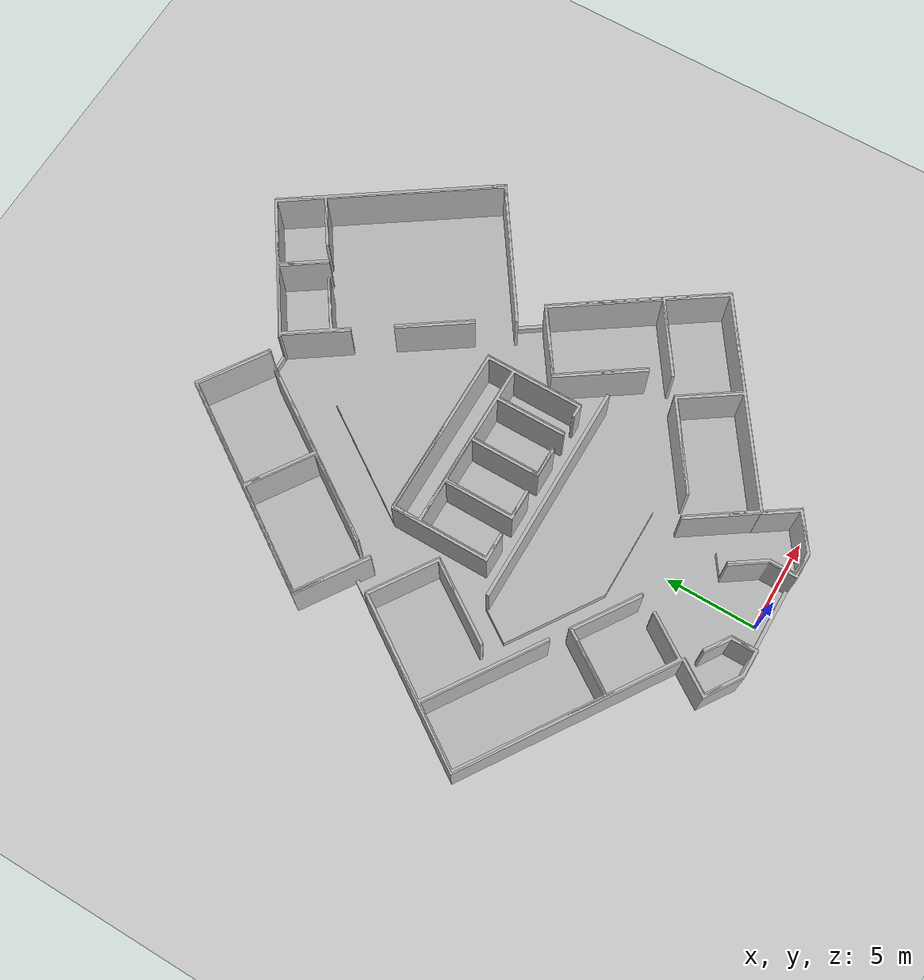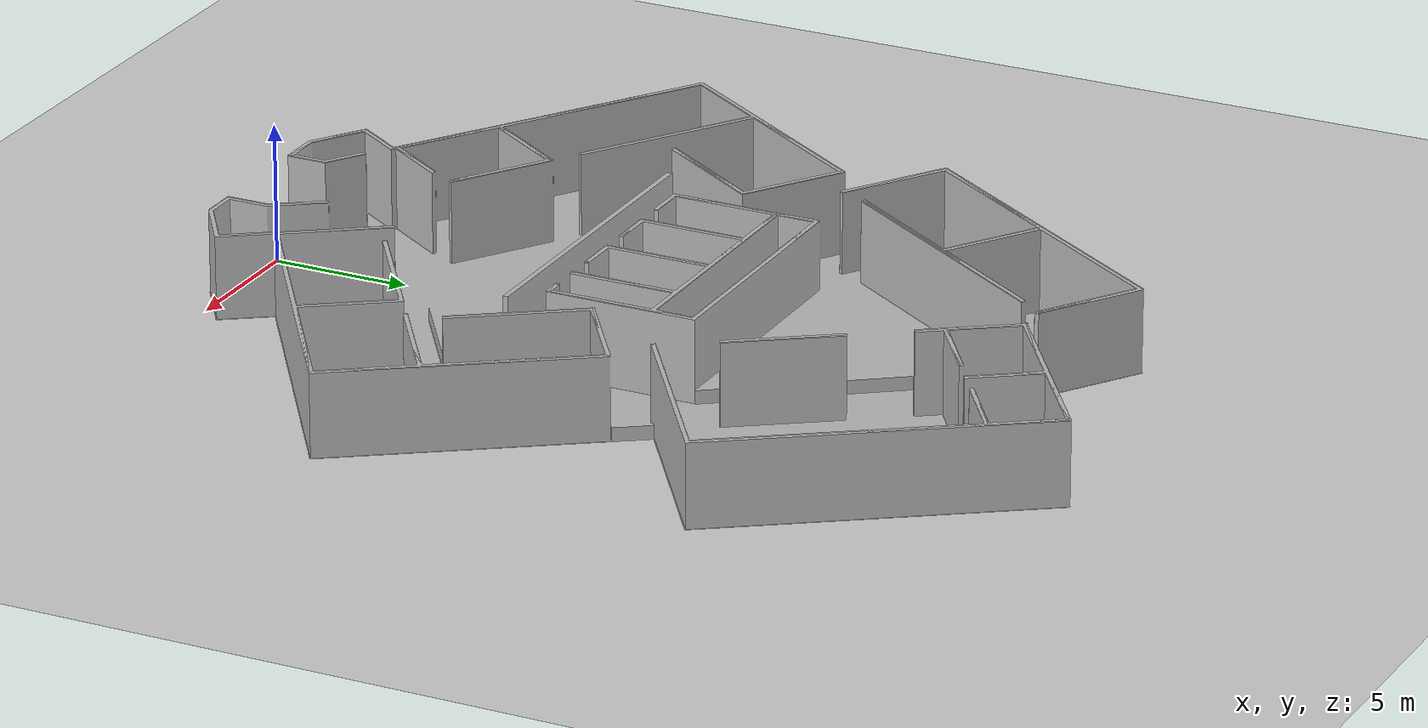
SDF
<?xml version="1.0" ?>
<sdf version="1.4">
  <world name="default">
    <include>
      <uri>model://ground_plane</uri>
    </include>
    <include>
      <uri>model://sun</uri>
    </include>
    <include>
      <uri>model://plano_posgrado</uri>
      <name>plano</name>
      <pose>0 0 0 0 0 0</pose>
    </include>
  </world>
</sdf>

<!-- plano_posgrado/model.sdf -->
<sdf version="1.6">
  <model name="plano">

<static>true</static>
    <link name="pared">
 <pose>8.934026 32.769393 0.14 0 0 0</pose>
      <collision name="collision">
        <geometry>
          <mesh>
            <scale>1.0 1.0 1.0</scale>
            <uri>model://plano_posgrado/meshes/pared.STL</uri>
<pose>0 0 0 0 0 0</pose>
          </mesh>
           <surface>
            <friction>
              <ode>
                <mu>1.2</mu>
                <mu2>1.2</mu2>
              </ode>
            </friction>
          </surface>
        </geometry>
      </collision>
      <visual name="visual">
        <geometry>
          <mesh>
            <scale>1.0 1.0 1.0</scale>
            <uri>model://plano_posgrado/meshes/pared.dae</uri>
	    <pose>0 0 0 0 0 0</pose>
          </mesh>
        </geometry>
      </visual>
    </link>

<static>true</static>
    <link name="pared_2">
 <pose>8.864026 32.735192 0.14 0 0 0</pose>
      <collision name="collision">
        <geometry>
          <mesh>
            <scale>1.0 1.0 1.0</scale>
            <uri>model://plano_posgrado/meshes/pared.STL</uri>
<pose>0 0 0 0 0 0</pose>
          </mesh>
           <surface>
            <friction>
              <ode>
                <mu>1.2</mu>
                <mu2>1.2</mu2>
              </ode>
            </friction>
          </surface>
        </geometry>
      </collision>
      <visual name="visual">
        <geometry>
          <mesh>
            <scale>1.0 1.0 1.0</scale>
            <uri>model://plano_posgrado/meshes/pared.dae</uri>
	    <pose>0 0 0 0 0 0</pose>
          </mesh>
        </geometry>
      </visual>
    </link>

<static>true</static>
    <link name="mural">
 <pose>8.934026 32.769393 0.164131 0 0 0</pose>
      <collision name="collision">
        <geometry>
          <mesh>
            <scale>1.0 1.0 1.0</scale>
            <uri>model://plano_posgrado/meshes/mural.STL</uri>
<pose>0 0 0 0 0 0</pose>
          </mesh>
           <surface>
            <friction>
              <ode>
                <mu>1.2</mu>
                <mu2>1.2</mu2>
              </ode>
            </friction>
          </surface>
        </geometry>
      </collision>
      <visual name="visual">
        <geometry>
          <mesh>
            <scale>1.0 1.0 1.0</scale>
            <uri>model://plano_posgrado/meshes/mural.dae</uri>
	    <pose>0 0 0 0 0 0</pose>
          </mesh>
        </geometry>
      </visual>
    </link>
<static>true</static>
    <link name="plano_piso">
 <pose>-14.632770 -0.902217 0.118 0 0 0</pose>
      <collision name="collision">
        <geometry>
          <mesh>
            <scale>1.0 1.0 1.0</scale>
            <uri>model://plano_posgrado/meshes/plano_piso.STL</uri>
<pose>0 0 0 0 0 0</pose>
          </mesh>
           <surface>
            <friction>
              <ode>
                <mu>1.2</mu>
                <mu2>1.2</mu2>
              </ode>
            </friction>
          </surface>
        </geometry>
      </collision>
      <visual name="visual">
        <geometry>
          <mesh>
            <scale>1.0 1.0 1.0</scale>
            <uri>model://plano_posgrado/meshes/plano_piso.dae</uri>
	    <pose>0 0 0 0 0 0</pose>
          </mesh>
        </geometry>
      </visual>
    </link>

  </model>
</sdf>
